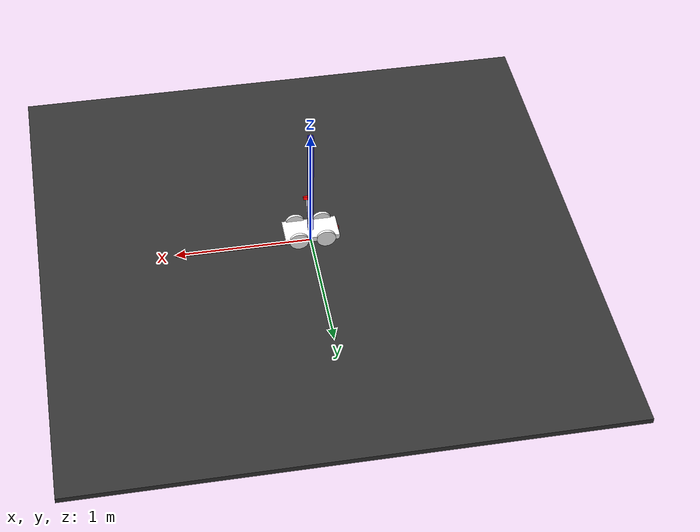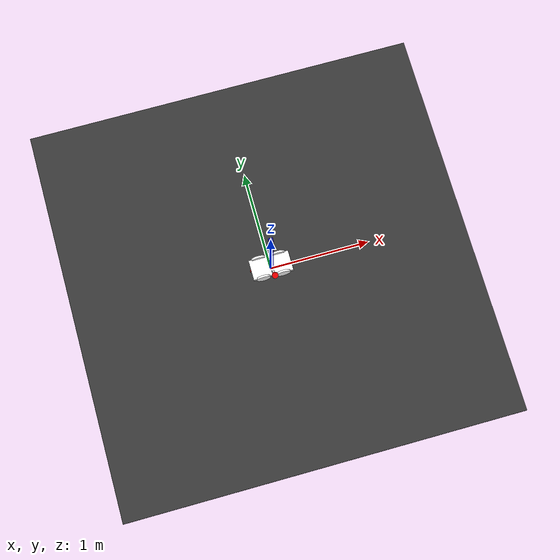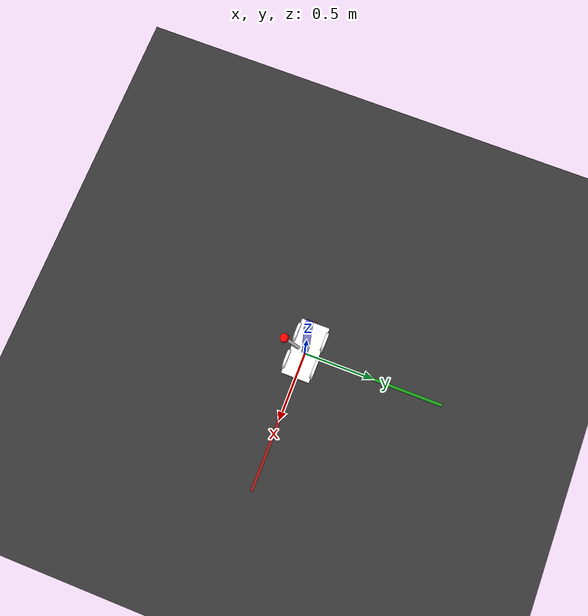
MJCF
<?xml version="1.0"?>
<mujoco>
    <worldbody>
        <body name="floor" pos="0 0 -0.1">
            <geom size="2.0 2.0 0.02" rgba="0.2 0.2 0.2 1" type="box" />
        </body>
        <body name="x_arrow" pos="0.5 0 0">
            <geom size="0.5 0.01 0.01" rgba="1 0 0 0.5" type="box" />
        </body>
        <body name="y_arrow" pos="0 0.5 0">
            <geom size="0.01 0.5 0.01" rgba="0 1 0 0.5" type="box" />
        </body>
        <body name="z_arrow" pos="0 0 0.5">
            <geom size="0.02 0.02 0.5" rgba="0 0 1 0.5" type="box" />
        </body>
        <body name="car" pos="0 0 0.1" axisangle="0 0 1 0">
            <geom size="0.2 0.1 0.02" rgba="1 1 1 0.9" type="box"/>
            <body name="front" pos="-0.2 0 0">
                <geom size="0.01 0.01 0.01" rgba="1 0 0 0.5" type="box" />
            </body>
            <body name="wheel_1" pos="0.1 0.1 0" axisangle="1 0 0 90">
                <geom size="0.07 0.01" rgba="1 1 1 0.9" type="cylinder"/>
            </body>
            <body name="wheel_2" pos="-0.1 0.1 0" axisangle="1 0 0 90">
                <geom size="0.07 0.01" rgba="1 1 1 0.9" type="cylinder"/>
            </body>
            <body name="wheel_3" pos="0.1 -0.1 0" axisangle="1 0 0 90">
                <geom size="0.07 0.01" rgba="1 1 1 0.9" type="cylinder"/>
            </body>
            <body name="wheel_4" pos="-0.1 -0.1 0" axisangle="1 0 0 90">
                <geom size="0.07 0.01" rgba="1 1 1 0.9" type="cylinder"/>
            </body>
            <body name="radar_1" pos="0 -0.1 0.1" axisangle="1 0 0 30">
                <geom size="0.01 0.01 0.1" rgba="1 1 1 1" type="box"/>
                <body name="radar_2" pos="0 0 0.1">
                    <geom size="0.03 0.01" rgba="1 0 0 1" type="cylinder"/>
                </body>
            </body>
        </body>
    </worldbody>
</mujoco>
